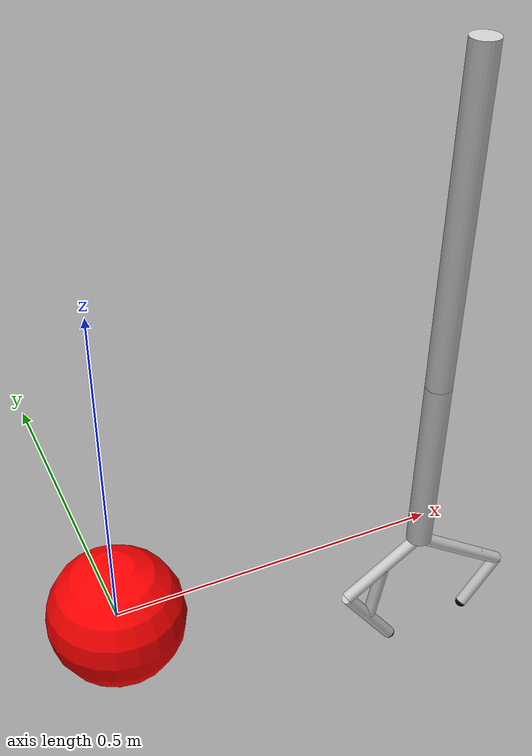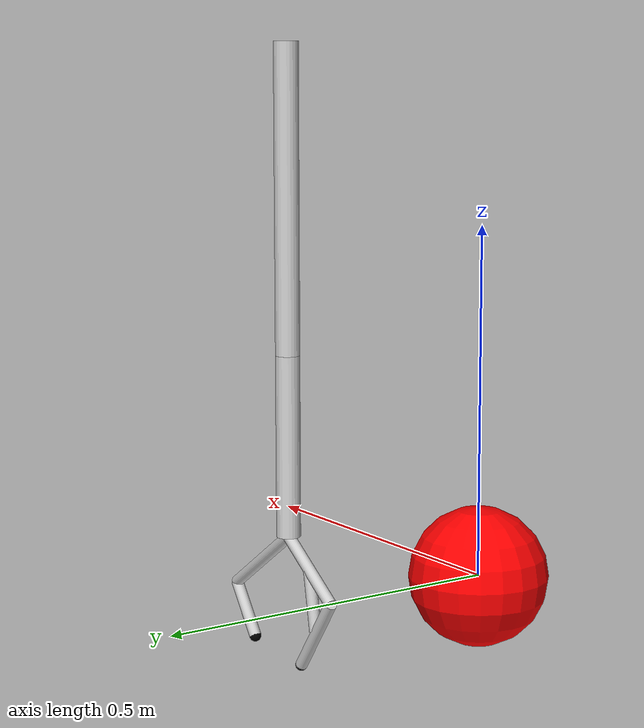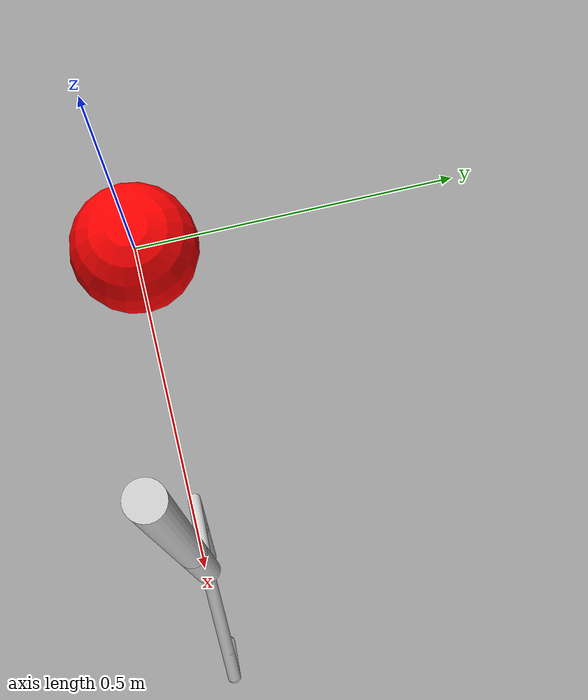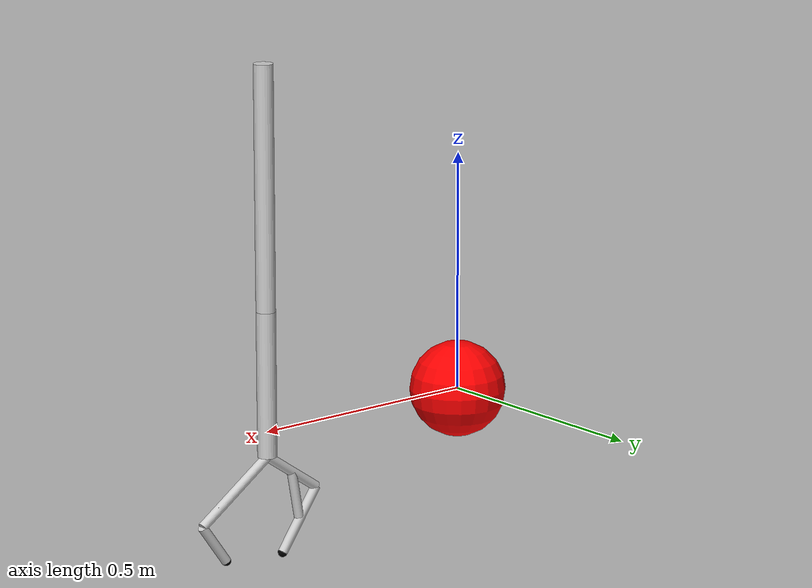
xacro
<?xml version="1.0"?>
<robot xmlns="http://drake.mit.edu"
 xmlns:xsi="http://www.w3.org/2001/XMLSchema-instance"
 xsi:schemaLocation="http://drake.mit.edu ../../../doc/drakeURDF.xsd"
 xmlns:xacro="http://www.ros.org/wiki/xacro" name="gripper">
<!--Properties of the robot-->
  <xacro:property name="dtr" value="0.0174532925"/>

  <xacro:property name="upperarm_mass" value = "3.3"/>
  <xacro:property name="upperarm_length" value=".5"/>
  <xacro:property name="upperarm_radius" value=".02"/>

  <xacro:property name="forearm_mass" value = "2"/>
  <xacro:property name="forearm_length" value=".3"/>
  <xacro:property name="forearm_radius" value=".02"/>

  <xacro:property name="ball_mass" value = "1.8"/>
  <xacro:property name="ball_radius" value=".1"/>

  <xacro:property name="gr1_mass" value = "1"/>
  <xacro:property name="gr1_length" value=".2"/>
  <xacro:property name="gr1_radius" value=".01"/>

  <xacro:property name="glstrut_mass" value = ".1"/>
  <xacro:property name="glstrut_length" value=".1"/>
  <xacro:property name="glstrut_radius" value=".01"/>

  <xacro:property name="gl_mass" value = ".8"/>
  <xacro:property name="gl_length" value=".15"/>
  <xacro:property name="gl_radius" value=".01"/>

  <xacro:property name="glb_mass" value = ".8"/>
  <xacro:property name="glb_length" value=".15"/>
  <xacro:property name="glb_radius" value=".01"/>

  <xacro:property name="gr2_mass" value = "0.025"/>
  <xacro:property name="gr2_length" value=".1"/>
  <xacro:property name="gr2_radius" value=".01"/>

  <xacro:property name="elbow_axis" value="0 1 0"/>
  <xacro:property name="elbow_damping" value="1"/>

  <xacro:property name="gl_axis" value="0 1 0"/>
  <xacro:property name="gl_damping" value="1"/>

  <xacro:property name="gr_axis" value="0 1 0"/>
  <xacro:property name="gr_damping" value="1"/>

  <xacro:property name="grr_contact_offset" value=".15"/>

<!--Inertial element for cylinder, axis along z-->
  <xacro:macro name="cyl_inertia" params="mass length radius">
    <inertial>
      <mass value="${mass}" />
     <inertia ixx="${.25*mass*radius*radius + 1/12*mass*length*length}" ixy="0" iyy="${.25*mass*radius*radius + 1/12*mass*length*length}" iyz="0" izz="${.5*mass*radius*radius}" ixz="0"/>
    </inertial>
  </xacro:macro>

<!--Inertial element for a sphere-->
  <xacro:macro name="sphere_inertia" params="mass r">
    <inertial>
      <mass value="${mass}" />
      <inertia ixx="${2/5*mass*r*r}" ixy="0" iyy="${2/5*mass*r*r}" iyz="0" izz="${2/5*mass*r*r}" ixz="0"/>
    </inertial>
  </xacro:macro>

<!--Create the visual element for a cylinder-->
  <xacro:macro name="cyl_visual" params="origin length radius color rgba">
    <visual>
      <origin xyz="0 0 ${origin}" rpy="0 0 0" />
      <geometry>
         <cylinder length="${length}" radius="${radius}" />
      </geometry>
      <material name="${color}">
        <color rgba="${rgba}" />
      </material>
    </visual>
  </xacro:macro>

<!--Create the visual element for a box-->
  <xacro:macro name="sphere_collision" params="r">
    <collision>
      <geometry>
         <sphere radius="${r}" />
      </geometry>
    </collision>
  </xacro:macro>

<!--Create the visual element for a box-->
  <xacro:macro name="sphere_visual" params="origin r color rgba">
    <visual>
         <origin xyz="${origin}" rpy="0 0 0" />
      <geometry>
         <sphere radius="${r}" />
      </geometry>
      <material name="${color}">
        <color rgba="${rgba}" />
      </material>
    </visual>
  </xacro:macro>

<!--Creates a link in the form of a cylinder-->
  <xacro:macro name="simple_cyl" params="name origin length radius mass color rgba">
    <link name="${name}">
      <xacro:cyl_inertia mass="${mass}" length="${length}" radius="${radius}"/>
      <xacro:cyl_visual origin="${origin}" length="${length}" radius="${radius}" color="${color}" rgba="${rgba}"/>
    </link>
  </xacro:macro>

<!--Creates a link in the form of a sphere-->
  <xacro:macro name="simple_sphere" params="name r mass color rgba">
    <link name="${name}">
      <xacro:sphere_inertia mass="${mass}" r="${r}"/>
      <xacro:sphere_visual origin="0 0 0" r="${r}" color="${color}" rgba="${rgba}"/>
    </link>
  </xacro:macro>

<!--Creates a simple joint between two cylindrical links.-->
  <xacro:macro name="cont_joint" params="name parent offset rpy child axisxyz">
    <joint name="${name}" type="continuous">
      <parent link="${parent}" />
      <child link="${child}" />
      <origin xyz="${offset}" rpy="${rpy}"/>
      <axis xyz="${axisxyz}" />
    </joint>
  </xacro:macro>

<!--Creates a collision link-->
  <xacro:macro name="collision_ball" params="name">
    <link name="${name}">
      <visual>
        <geometry>
          <sphere radius="0.01"/>
        </geometry>
        <material name="black">
          <color rgba="0 0 0 1"/>
        </material>
      </visual>
      <collision>
        <geometry>
          <sphere radius="0"/>
        </geometry>
      </collision>
    </link>
  </xacro:macro>

<!--Creates a simple fixed joint-->
  <xacro:macro name="fixed_jt" params="name parent offset rpy child">
    <joint name="${name}" type="fixed">
      <parent link="${parent}"/>
      <child link="${child}"/>
      <origin xyz="${offset}" rpy="${rpy}"/>
    </joint>
  </xacro:macro>

<!--Creates a transmission at a joint.-->
  <xacro:macro name="create_tranny" params="name">
    <transmission type="SimpleTransmission" name="${name}_act">
      <actuator name="${name}_tranny" />
      <joint name="${name}" />
      <mechanicalReduction>1</mechanicalReduction>
    </transmission>
  </xacro:macro>

  <link name="world"/>

  <xacro:simple_sphere name="ball_dot" r="${ball_radius/10}" mass="${ball_mass/10}" color="white" rgba="1 1 1 1"/>
  <xacro:simple_sphere name="ball" r="${ball_radius}" mass="${ball_mass}" color="red" rgba="1 0 0 1"/>
  <xacro:simple_cyl name="strut" origin="${-glstrut_length/2}" mass="${glstrut_mass}" length="${glstrut_length}" radius="${glstrut_radius}" color="grey" rgba=".8 .8 .8 1"/>
  <xacro:simple_cyl name="upperarm" origin="${-upperarm_length/2}" mass="${upperarm_mass}" length="${upperarm_length}" radius="${upperarm_radius}" color="grey" rgba=".8 .8 .8 1"/>
  <xacro:simple_cyl name="forearm" origin="${-forearm_length/2}" mass="${forearm_mass}" length="${forearm_length}" radius="${forearm_radius}" color="grey" rgba=".8 .8 .8 1"/>
  <xacro:simple_cyl name="grip_rtop" origin="${-gr1_length/2}" mass="${gr1_mass}" length="${gr1_length}" radius="${gr1_radius}" color="grey" rgba=".8 .8 .8 1"/>
  <xacro:simple_cyl name="grip_ltop" origin="${-gl_length/2}" mass="${gl_mass}" length="${gl_length}" radius="${gl_radius}" color="grey" rgba=".8 .8 .8 1"/>
  <xacro:simple_cyl name="grip_rbottom" origin="${-gr2_length/2}" mass="${gr2_mass}" length="${gr2_length}" radius="${gr2_radius}" color="grey" rgba=".8 .8 .8 1"/>
  <xacro:simple_cyl name="grip_lbottom" origin="${-glb_length/2}" mass="${glb_mass}" length="${glb_length}" radius="${glb_radius}" color="grey" rgba=".8 .8 .8 1"/>

  <xacro:collision_ball name="gr_top"/>
  <xacro:collision_ball name="gr_bottom"/>
  <xacro:collision_ball name="gl"/>

  <joint name="shoulder" type="continuous">
    <parent link="world"/>
    <child link="upperarm"/>
    <axis xyz="0 1 0"/>
    <origin xyz = ".5 0 .75" rpy = "0 0 0"/>
  </joint>

  <xacro:cont_joint name="elbow" parent="upperarm" child="forearm"  axisxyz="0 1 0" offset=" 0 0 ${-upperarm_length}" rpy="0 0 0"/>
  <xacro:cont_joint name="wrist_left" parent="forearm" child="grip_ltop"  axisxyz="0 1 0" offset=" 0 0 ${-forearm_length}" rpy="0 ${55*dtr} 0"/>
  <xacro:cont_joint name="wrist_right" parent="forearm" child="grip_rtop"  axisxyz="0 1 0" offset=" 0 0 ${-forearm_length}" rpy="0 ${-55*dtr} 0"/>
  <xacro:cont_joint name="finger_right" parent="grip_rtop" child="grip_rbottom" axisxyz="0 1 0" offset="0 0 ${-gr1_length}" rpy="0 ${90*dtr} 0"/>

  <xacro:fixed_jt name="finger_left" parent="grip_ltop" child="grip_lbottom" offset="0 0 ${-gl_length}" rpy="0 ${-90*dtr} 0"/>
  <xacro:fixed_jt name="coll_left" parent="grip_lbottom" child="gl" offset="0 0 ${-glb_length}" rpy="0 0 0"/>
  <xacro:fixed_jt name="coll_right2" parent="grip_rbottom" child="gr_bottom" offset="0 0 ${-gr2_length}" rpy="0 0 0"/>
  <xacro:fixed_jt name="coll_right1" parent="grip_rtop" child="gr_top" offset="0 0 ${-grr_contact_offset}" rpy="0 0 0"/>
  <xacro:fixed_jt name="strut_joint" parent="grip_ltop" child="strut" offset="0 0 ${-gl_length/2}" rpy="0 ${-45*dtr} 0"/>
  <xacro:fixed_jt name="ball_dot_joint" parent="ball" child="ball_dot" offset="0 0 ${ball_radius/2}" rpy="0 0 0"/>

  <joint name="floating_base" type="planar">
    <parent link="world" />
    <child link="ball" />
    <axis xyz="0 1 0" />
  </joint>

  <xacro:create_tranny name="shoulder"/>
  <xacro:create_tranny name="elbow"/>
  <xacro:create_tranny name="wrist_left"/>
  <xacro:create_tranny name="wrist_right"/>
  <xacro:create_tranny name="finger_right"/>
</robot>
